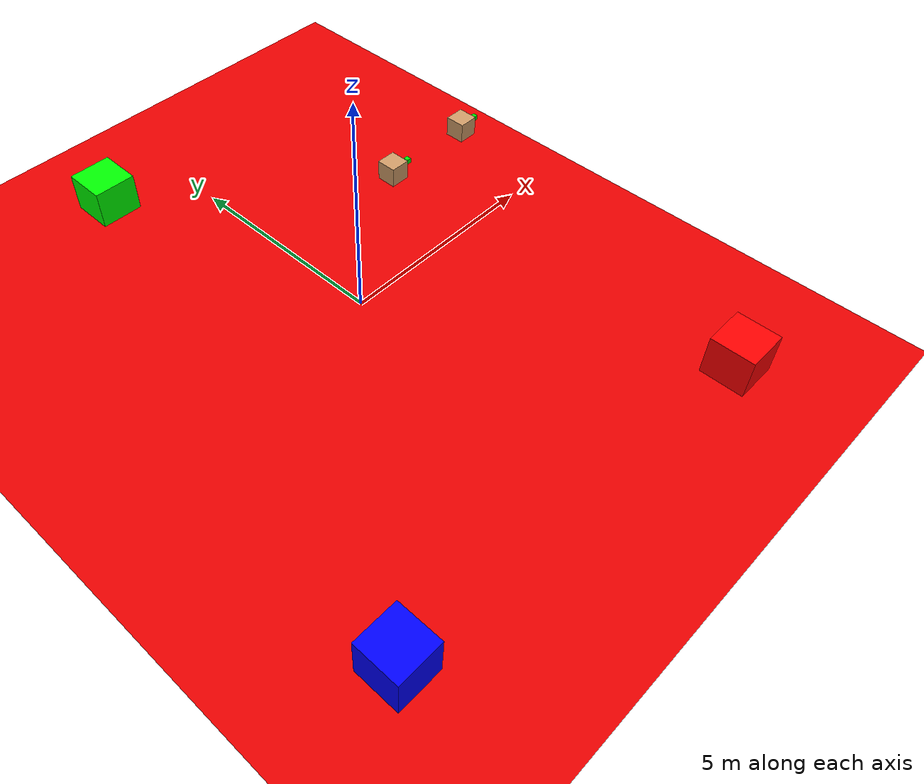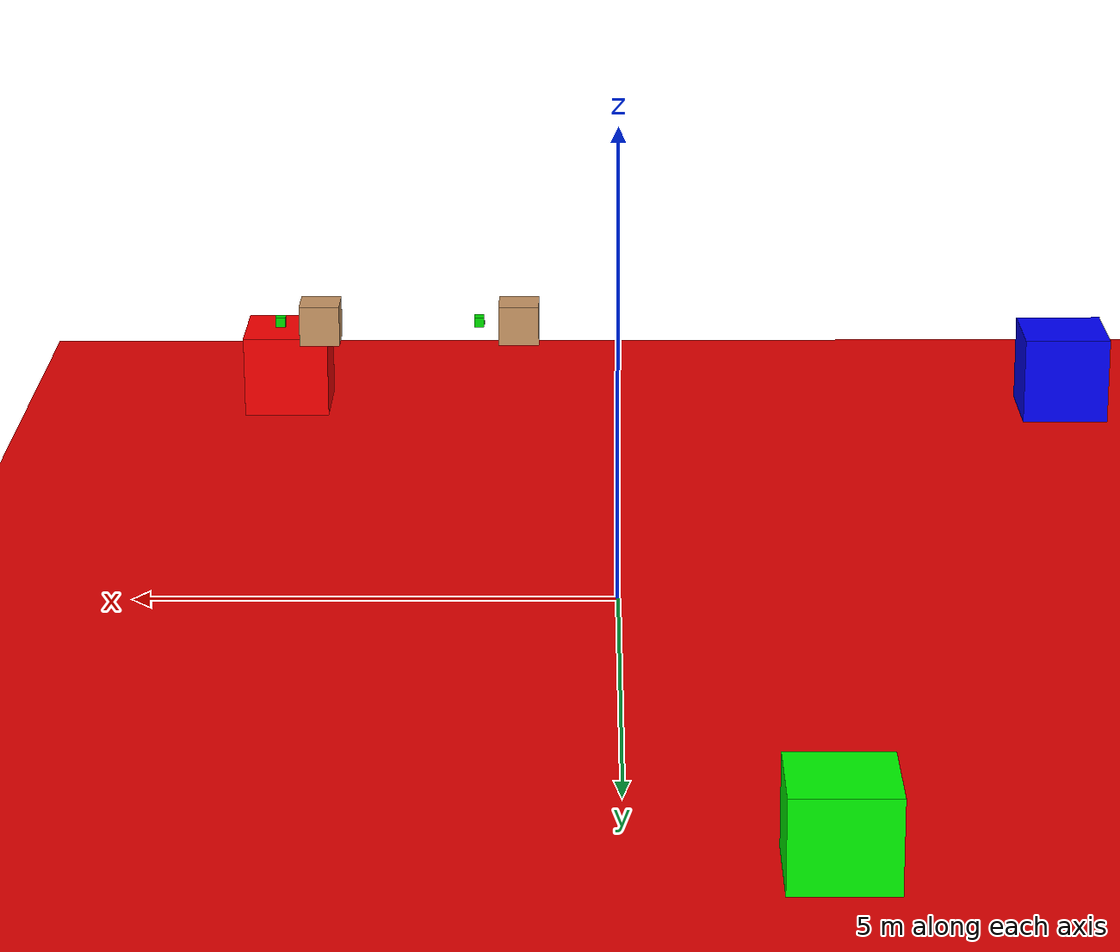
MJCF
<mujoco>
    <custom>
      <numeric data="0.0 0.0 0.55 1.0 0.0 0.0 0.0 0.0 1.0 0.0 -1.0 0.0 -1.0 0.0 1.0" name="init_qpos"/>
    </custom>
    <default>
      <joint armature="1" damping="1" limited="true"/>
      <geom conaffinity="0" condim="3" density="5.0" friction="1 0.5 0.5" margin="0.01" rgba="0.8 0.6 0.4 1"/>
    </default>
    <asset>
      <texture builtin="gradient" height="100" rgb1="1 1 1" rgb2="0 0 0" type="skybox" width="100"/>
      <texture builtin="flat" height="1278" mark="cross" markrgb="1 1 1" name="texgeom" random="0.01" rgb1="0.8 0.6 0.4" rgb2="0.8 0.6 0.4" type="cube" width="127"/>
      <texture builtin="checker" height="100" name="texplane" rgb1="0 0 0" rgb2="0.8 0.8 0.8" type="2d" width="100"/>
      <material name="MatPlane" reflectance="0.5" shininess="1" specular="1" texrepeat="60 60" texture="texplane"/>
      <material name="geom" texture="texgeom" texuniform="true"/>
    </asset>
    <worldbody>
    <body name="agent1_torso" pos="3 0 3">
      <camera name="agent1_track" mode="trackcom" pos="0 -3 0.3" xyaxes="1 0 0 0 0 1"/>
      <site name="agent1_box_range" type="box" pos="0.4 0 0" size=".05 .05 .05" rgba="0 .9 0 1" euler="0 90 0"/>
      <geom name="agent1_torso_geom" pos="0 0 0" size=".2 .2 .2" type="box"/>
      <joint armature="0" damping="0" limited="false" margin="0.01" name="agent1_root" pos="0 0 0" type="free"/>
    </body>
    <body name="agent2_torso" pos="1 0 3">
      <camera name="agent2_track" mode="trackcom" pos="0 -3 0.3" xyaxes="1 0 0 0 0 1"/>
      <site name="agent2_box_range" type="box" pos="0.4 0 0" size=".05 .05 .05" rgba="0 .9 0 1" euler="0 90 0"/>
      <geom name="agent2_torso_geom" pos="0 0 0" size=".2 .2 .2" type="box"/>
      <joint armature="0" damping="0" limited="false" margin="0.01" name="agent2_root" pos="0 0 0" type="free"/>
    </body>
    <light diffuse=".5 .5 .5" pos="0 0 5" dir="0 0 -1" />
    <geom conaffinity="1" name="ground" condim="3" type="plane" size="15 15 3.330669E-16" rgba=".9 0 0 1" />
    <body pos="3.927995 -6.745218 0.4348531" name="target_1">
      <geom conaffinity="1" condim="3" type="box" size="0.5 0.5 0.5" euler="0 0 0" rgba="255 0 0 1" />
    </body>
    <body pos="-1.864272 6.520146 0.386694" name="target_3">
      <geom conaffinity="1" condim="3" type="box" size="0.5 0.5 0.5" euler="0 0 0" rgba="0 255 0 1" />
    </body>
    <body pos="-5.367813 -6.286523 0.5278883" name="target_2">
      <geom conaffinity="1" condim="3" type="box" size="0.5 0.5 0.5" euler="0 0 0" rgba="0 0 255 1" />
    </body>
  </worldbody>
  <actuator>
  </actuator>

  <sensor>
    <rangefinder name="agent1_box1" site="agent1_box_range" cutoff="20"/>
    <frameyaxis name="agent1_yAxis" objtype="site" objname="agent1_box_range"/>
    <rangefinder name="agent2_box1" site="agent2_box_range" cutoff="20"/>
    <frameyaxis name="agent2_yAxis" objtype="site" objname="agent2_box_range"/>
  </sensor>
</mujoco>
